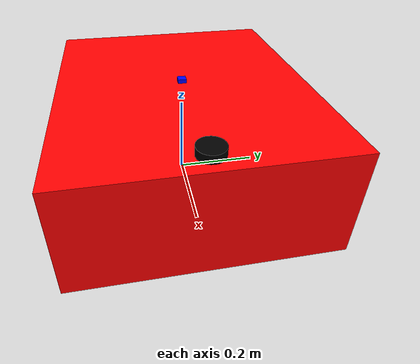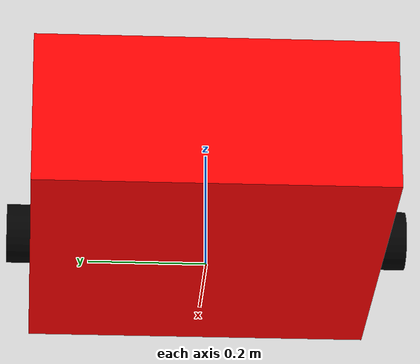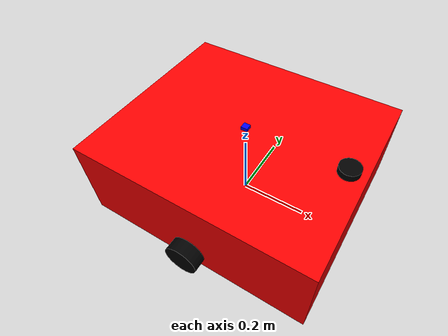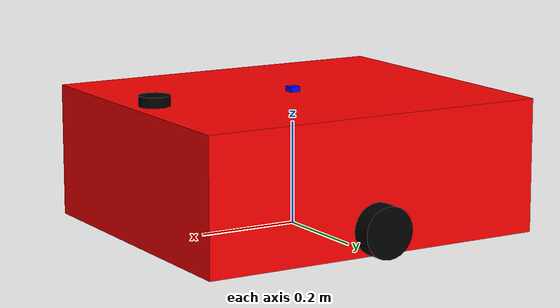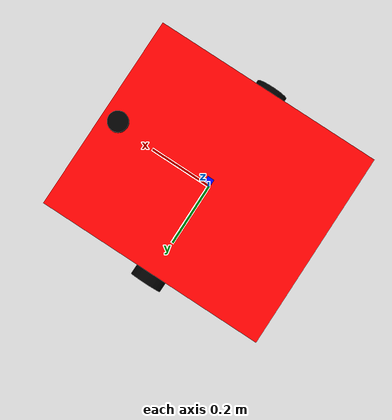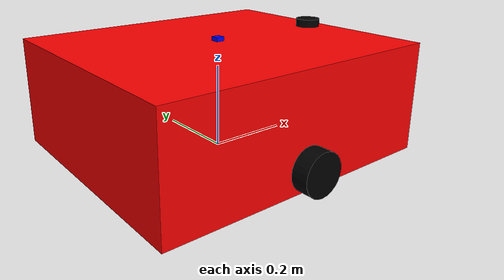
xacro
<?xml version="1.0" ?>
<robot name="tankette" xmlns:xacro="http://www.ros.org/wiki/xacro">

  <!-- Constants -->
  <xacro:property name="chassis_length" value="0.70"/> <!-- 70 cm -->
  <xacro:property name="chassis_width" value="0.60"/>  <!-- 60 cm -->
  <xacro:property name="chassis_height" value="0.26"/> <!-- 26 cm -->
  <xacro:property name="track_height" value="0.10"/>
  <xacro:property name="wheel_radius" value="0.05"/>
  <xacro:property name="wheel_width" value="0.08"/>

  <!-- Material Definitions -->
  <material name="red">
    <color rgba="1.0 0.0 0.0 1.0"/>
  </material>
  <material name="black">
    <color rgba="0.0 0.0 0.0 1.0"/>
  </material>
  <material name="blue">
    <color rgba="0.0 0.0 1.0 1.0"/>
  </material>

 <!-- Base Link -->
  <link name="base_link"/>

  <!-- Main Chassis -->
  <link name="chassis">
    <inertial>
      <mass value="8.0"/>
      <origin xyz="0 0 ${chassis_height/2}"/>
      <inertia ixx="0.15" ixy="0.0" ixz="0.0" iyy="0.25" iyz="0.0" izz="0.35"/>
    </inertial>
    <visual>
      <origin xyz="0 0 ${chassis_height/2}" rpy="0 0 0"/>
      <geometry>
        <box size="${chassis_length} ${chassis_width} ${chassis_height}"/>
      </geometry>
      <material name="red"/>
    </visual>
    <collision>
      <origin xyz="0 0 ${chassis_height/2}" rpy="0 0 0"/>
      <geometry>
        <box size="${chassis_length} ${chassis_width} ${chassis_height}"/>
      </geometry>
    </collision>
  </link>

  <!-- Base to Chassis Joint -->
  <joint name="base_to_chassis" type="fixed">
    <parent link="base_link"/>
    <child link="chassis"/>
    <origin xyz="0 0 0" rpy="0 0 0"/>
  </joint>

  <!-- Left Track/Wheel -->
  <link name="left_track">
    <inertial>
      <mass value="1.0"/>
      <origin xyz="0 0 0"/>
      <inertia ixx="0.01" ixy="0.0" ixz="0.0" iyy="0.01" iyz="0.0" izz="0.01"/>
    </inertial>
    <visual>
      <origin xyz="0 0 0" rpy="1.5708 0 0"/>
      <geometry>
        <cylinder radius="${wheel_radius}" length="${wheel_width}"/>
      </geometry>
      <material name="black"/>
    </visual>
    <collision>
      <origin xyz="0 0 0" rpy="1.5708 0 0"/>
      <geometry>
        <cylinder radius="${wheel_radius}" length="${wheel_width}"/>
      </geometry>
    </collision>
  </link>

  <!-- Right Track/Wheel -->
  <link name="right_track">
    <inertial>
      <mass value="1.0"/>
      <origin xyz="0 0 0"/>
      <inertia ixx="0.01" ixy="0.0" ixz="0.0" iyy="0.01" iyz="0.0" izz="0.01"/>
    </inertial>
    <visual>
      <origin xyz="0 0 0" rpy="1.5708 0 0"/>
      <geometry>
        <cylinder radius="${wheel_radius}" length="${wheel_width}"/>
      </geometry>
      <material name="black"/>
    </visual>
    <collision>
      <origin xyz="0 0 0" rpy="1.5708 0 0"/>
      <geometry>
        <cylinder radius="${wheel_radius}" length="${wheel_width}"/>
      </geometry>
    </collision>
  </link>

  <!-- Left Track Joint (Automatically moves out with width changes) -->
  <joint name="left_track_joint" type="continuous">
    <parent link="chassis"/>
    <child link="left_track"/>
    <origin xyz="0 ${chassis_width/2} 0.05" rpy="0 0 0"/>
    <axis xyz="0 1 0"/>
  </joint>

  <!-- Right Track Joint (Automatically moves out with width changes) -->
  <joint name="right_track_joint" type="continuous">
    <parent link="chassis"/>
    <child link="right_track"/>
    <origin xyz="0 ${-chassis_width/2} 0.05" rpy="0 0 0"/>
    <axis xyz="0 1 0"/>
  </joint>

  <!-- RPLiDAR Sensor Link -->
  <link name="laser">
    <inertial>
      <mass value="0.5"/>
      <inertia ixx="0.001" ixy="0.0" ixz="0.0" iyy="0.001" iyz="0.0" izz="0.001"/>
    </inertial>
    <visual>
      <origin xyz="0 0 0" rpy="0 0 0"/>
      <geometry>
        <cylinder radius="0.03" length="0.04"/>
      </geometry>
      <material name="black"/>
    </visual>
    <collision>
      <origin xyz="0 0 0" rpy="0 0 0"/>
      <geometry>
        <cylinder radius="0.03" length="0.04"/>
      </geometry>
    </collision>
  </link>

  <!-- RPLiDAR Joint (Mounted on top surface, 30cm forward from center) -->
  <joint name="lidar_joint" type="fixed">
    <parent link="base_link"/>
    <child link="laser"/>
    <origin xyz="0.30 0.0 ${chassis_height}" rpy="0 0 0"/>
  </joint>

  <!-- IMU Sensor Link -->
  <link name="imu">
    <inertial>
      <mass value="0.1"/>
      <inertia ixx="0.0001" ixy="0.0" ixz="0.0" iyy="0.0001" iyz="0.0" izz="0.0001"/>
    </inertial>
    <visual>
      <origin xyz="0 0 0" rpy="0 0 0"/>
      <geometry>
        <box size="0.02 0.02 0.02"/>
      </geometry>
      <material name="blue"/>
    </visual>
    <collision>
      <origin xyz="0 0 0" rpy="0 0 0"/>
      <geometry>
        <box size="0.02 0.02 0.02"/>
      </geometry>
    </collision>
  </link>

  <!-- IMU Joint (Mounted on the surface) -->
  <joint name="imu_joint" type="fixed">
    <parent link="chassis"/>
    <child link="imu"/>
    <origin xyz="0 0 ${chassis_height}" rpy="0 0 0"/>
  </joint>

  <!-- Gazebo Physics and Global Properties -->
  <gazebo>
    <physics type="ode">
      <max_step_size>0.001</max_step_size>
      <real_time_factor>1</real_time_factor>
    </physics>
  </gazebo>

  <!-- Gazebo Link Visuals & Friction -->
  <gazebo reference="chassis">
    <material>Gazebo/Red</material>
    <mu1>0.3</mu1>
    <mu2>0.3</mu2>
  </gazebo>

  <gazebo reference="left_track">
    <material>Gazebo/Black</material>
    <mu1>1.0</mu1>
    <mu2>1.0</mu2>
  </gazebo>

  <gazebo reference="right_track">
    <material>Gazebo/Black</material>
    <mu1>1.0</mu1>
    <mu2>1.0</mu2>
  </gazebo>

  <!-- RPLiDAR Gazebo Plugin -->
  <gazebo reference="laser">
    <material>Gazebo/Black</material>
    <sensor name="rplidar" type="ray">
      <always_on>true</always_on>
      <visualize>true</visualize>
      <update_rate>10</update_rate>
      <ray>
        <scan>
          <horizontal>
            <samples>360</samples>
            <resolution>1.0</resolution>
            <min_angle>0</min_angle>
            <max_angle>6.28</max_angle>
          </horizontal>
        </scan>
        <range>
          <min>0.12</min>
          <max>12.0</max>
          <resolution>0.01</resolution>
        </range>
      </ray>
      <plugin name="rplidar_plugin" filename="libgazebo_ros_ray_sensor.so">
        <ros>
          <namespace>/</namespace>
          <remapping>~/out:=scan</remapping>
        </ros>
        <output_type>sensor_msgs/LaserScan</output_type>
        <frame_name>laser</frame_name>
      </plugin>
    </sensor>
  </gazebo>

  <!-- IMU Gazebo Plugin -->
  <gazebo reference="imu">
    <material>Gazebo/Blue</material>
    <sensor name="imu_sensor" type="imu">
      <always_on>true</always_on>
      <update_rate>100</update_rate>
      <imu>
        <angular_velocity>
          <x><noise type="gaussian"><mean>0.0</mean><stddev>0.009</stddev></noise></x>
          <y><noise type="gaussian"><mean>0.0</mean><stddev>0.009</stddev></noise></y>
          <z><noise type="gaussian"><mean>0.0</mean><stddev>0.009</stddev></noise></z>
        </angular_velocity>
        <linear_acceleration>
          <x><noise type="gaussian"><mean>0.0</mean><stddev>0.021</stddev></noise></x>
          <y><noise type="gaussian"><mean>0.0</mean><stddev>0.021</stddev></noise></y>
          <z><noise type="gaussian"><mean>0.0</mean><stddev>0.021</stddev></noise></z>
        </linear_acceleration>
      </imu>
      <plugin name="imu_plugin" filename="libgazebo_ros_imu_sensor.so">
        <ros>
          <namespace>/</namespace>
          <remapping>~/out:=imu/data_raw</remapping>
        </ros>
        <initial_orientation_as_reference>false</initial_orientation_as_reference>
        <frame_name>imu</frame_name>
      </plugin>
    </sensor>
  </gazebo>

  <!-- Differential Drive Plugin -->
  <gazebo>
    <plugin name="differential_drive" filename="libgazebo_ros_diff_drive.so">
      <ros>
        <namespace>/</namespace>
        <remapping>odom:=odom_raw</remapping>
      </ros>
      <left_joint>left_track_joint</left_joint>
      <right_joint>right_track_joint</right_joint>
      <wheel_separation>${chassis_width}</wheel_separation>
      <wheel_diameter>${2*wheel_radius}</wheel_diameter>
      <max_wheel_torque>10.0</max_wheel_torque>
      <max_wheel_acceleration>3.0</max_wheel_acceleration>
      <command_topic>cmd_vel</command_topic>
      <publish_odom>true</publish_odom>
      <publish_odom_tf>true</publish_odom_tf>
      <odometry_topic>odom_raw</odometry_topic>
      <odometry_frame>odom</odometry_frame>
      <robot_base_frame>base_link</robot_base_frame>
    </plugin>
  </gazebo>

</robot>
